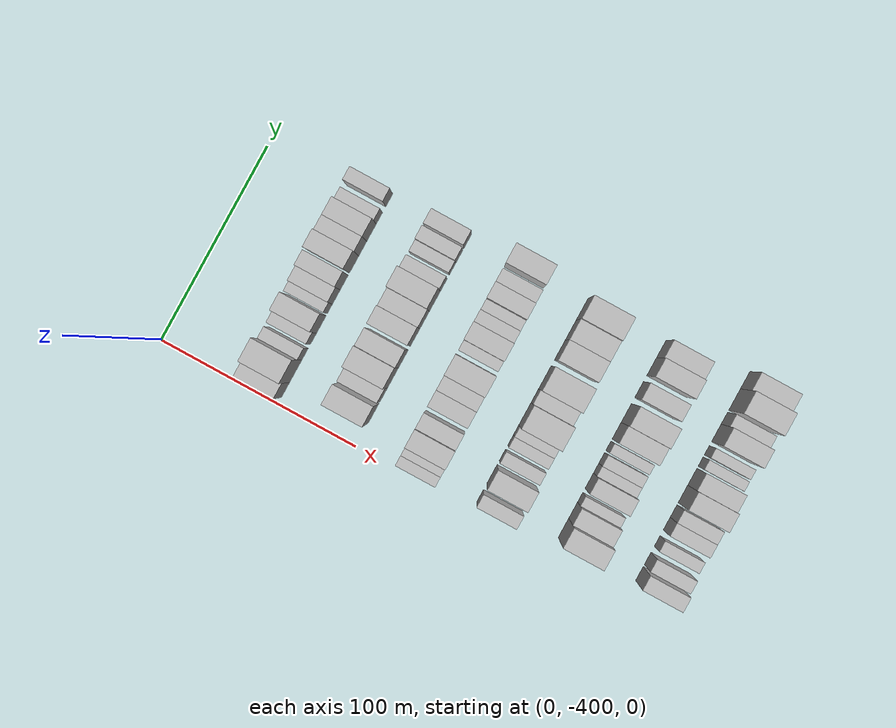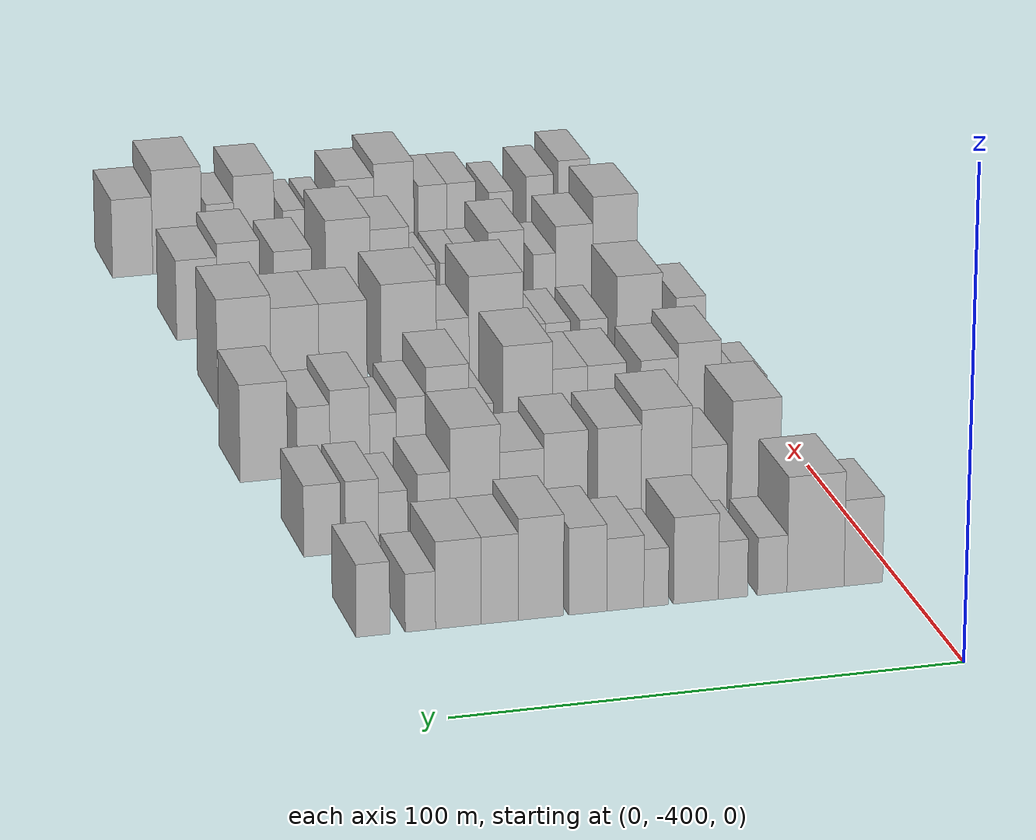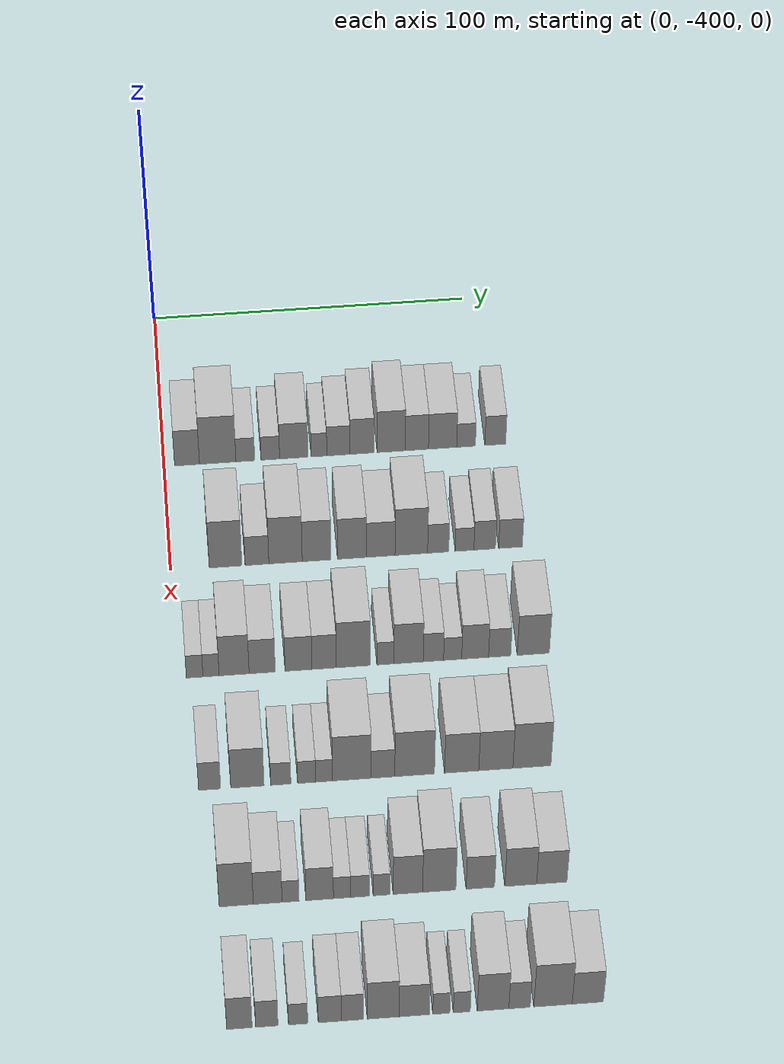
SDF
<sdf version="1.6">
 <world name="default">
  <model name="building_22">
   <static>1</static>
   <pose>50.0000 -392.6774 0 0.000000 0.000000 0.000000</pose>
   <link name="link">
    <pose>0 0 9.00 0 0 0</pose>
    <collision name="collision"><geometry><box><size>20.0000 7.8410 18.0000</size></box></geometry></collision>
    <visual name="visual">
     <cast_shadows>0</cast_shadows>
     <geometry><box><size>20.0000 7.8410 18.0000</size></box></geometry>
     <material>
      <script>
       <uri>model://HANNAS_wall/materials/scripts</uri>
       <uri>model://HANNAS_wall/materials/textures</uri>
       <name>vrc/HANNAS_wall</name>
      </script>
     </material>
    </visual>
   </link>
  </model>
  <model name="building_23">
   <static>1</static>
   <pose>50.0000 -383.0154 0 0.000000 0.000000 0.000000</pose>
   <link name="link">
    <pose>0 0 12.00 0 0 0</pose>
    <collision name="collision"><geometry><box><size>20.0000 11.4830 24.0000</size></box></geometry></collision>
    <visual name="visual">
     <cast_shadows>0</cast_shadows>
     <geometry><box><size>20.0000 11.4830 24.0000</size></box></geometry>
     <material>
      <script>
       <uri>model://HANNAS_wall/materials/scripts</uri>
       <uri>model://HANNAS_wall/materials/textures</uri>
       <name>vrc/HANNAS_wall</name>
      </script>
     </material>
    </visual>
   </link>
  </model>
  <model name="building_24">
   <static>1</static>
   <pose>50.0000 -374.3030 0 0.000000 0.000000 0.000000</pose>
   <link name="link">
    <pose>0 0 6.00 0 0 0</pose>
    <collision name="collision"><geometry><box><size>20.0000 5.9419 12.0000</size></box></geometry></collision>
    <visual name="visual">
     <cast_shadows>0</cast_shadows>
     <geometry><box><size>20.0000 5.9419 12.0000</size></box></geometry>
     <material>
      <script>
       <uri>model://HANNAS_wall/materials/scripts</uri>
       <uri>model://HANNAS_wall/materials/textures</uri>
       <name>vrc/HANNAS_wall</name>
      </script>
     </material>
    </visual>
   </link>
  </model>
  <model name="building_25">
   <static>1</static>
   <pose>50.0000 -366.4054 0 0.000000 0.000000 0.000000</pose>
   <link name="link">
    <pose>0 0 6.00 0 0 0</pose>
    <collision name="collision"><geometry><box><size>20.0000 5.8532 12.0000</size></box></geometry></collision>
    <visual name="visual">
     <cast_shadows>0</cast_shadows>
     <geometry><box><size>20.0000 5.8532 12.0000</size></box></geometry>
     <material>
      <script>
       <uri>model://HANNAS_wall/materials/scripts</uri>
       <uri>model://HANNAS_wall/materials/textures</uri>
       <name>vrc/HANNAS_wall</name>
      </script>
     </material>
    </visual>
   </link>
  </model>
  <model name="building_26">
   <static>1</static>
   <pose>50.0000 -358.9968 0 0.000000 0.000000 0.000000</pose>
   <link name="link">
    <pose>0 0 9.00 0 0 0</pose>
    <collision name="collision"><geometry><box><size>20.0000 8.9639 18.0000</size></box></geometry></collision>
    <visual name="visual">
     <cast_shadows>0</cast_shadows>
     <geometry><box><size>20.0000 8.9639 18.0000</size></box></geometry>
     <material>
      <script>
       <uri>model://HANNAS_wall/materials/scripts</uri>
       <uri>model://HANNAS_wall/materials/textures</uri>
       <name>vrc/HANNAS_wall</name>
      </script>
     </material>
    </visual>
   </link>
  </model>
  <model name="building_27">
   <static>1</static>
   <pose>50.0000 -351.0459 0 0.000000 0.000000 0.000000</pose>
   <link name="link">
    <pose>0 0 6.00 0 0 0</pose>
    <collision name="collision"><geometry><box><size>20.0000 4.9378 12.0000</size></box></geometry></collision>
    <visual name="visual">
     <cast_shadows>0</cast_shadows>
     <geometry><box><size>20.0000 4.9378 12.0000</size></box></geometry>
     <material>
      <script>
       <uri>model://HANNAS_wall/materials/scripts</uri>
       <uri>model://HANNAS_wall/materials/textures</uri>
       <name>vrc/HANNAS_wall</name>
      </script>
     </material>
    </visual>
   </link>
  </model>
  <model name="building_28">
   <static>1</static>
   <pose>50.0000 -344.8875 0 0.000000 0.000000 0.000000</pose>
   <link name="link">
    <pose>0 0 7.50 0 0 0</pose>
    <collision name="collision"><geometry><box><size>20.0000 7.3791 15.0000</size></box></geometry></collision>
    <visual name="visual">
     <cast_shadows>0</cast_shadows>
     <geometry><box><size>20.0000 7.3791 15.0000</size></box></geometry>
     <material>
      <script>
       <uri>model://HANNAS_wall/materials/scripts</uri>
       <uri>model://HANNAS_wall/materials/textures</uri>
       <name>vrc/HANNAS_wall</name>
      </script>
     </material>
    </visual>
   </link>
  </model>
  <model name="building_29">
   <static>1</static>
   <pose>50.0000 -337.4229 0 0.000000 0.000000 0.000000</pose>
   <link name="link">
    <pose>0 0 9.00 0 0 0</pose>
    <collision name="collision"><geometry><box><size>20.0000 7.5499 18.0000</size></box></geometry></collision>
    <visual name="visual">
     <cast_shadows>0</cast_shadows>
     <geometry><box><size>20.0000 7.5499 18.0000</size></box></geometry>
     <material>
      <script>
       <uri>model://HANNAS_wall/materials/scripts</uri>
       <uri>model://HANNAS_wall/materials/textures</uri>
       <name>vrc/HANNAS_wall</name>
      </script>
     </material>
    </visual>
   </link>
  </model>
  <model name="building_30">
   <static>1</static>
   <pose>50.0000 -328.2033 0 0.000000 0.000000 0.000000</pose>
   <link name="link">
    <pose>0 0 10.50 0 0 0</pose>
    <collision name="collision"><geometry><box><size>20.0000 8.8892 21.0000</size></box></geometry></collision>
    <visual name="visual">
     <cast_shadows>0</cast_shadows>
     <geometry><box><size>20.0000 8.8892 21.0000</size></box></geometry>
     <material>
      <script>
       <uri>model://HANNAS_wall/materials/scripts</uri>
       <uri>model://HANNAS_wall/materials/textures</uri>
       <name>vrc/HANNAS_wall</name>
      </script>
     </material>
    </visual>
   </link>
  </model>
  <model name="building_31">
   <static>1</static>
   <pose>50.0000 -320.0710 0 0.000000 0.000000 0.000000</pose>
   <link name="link">
    <pose>0 0 9.00 0 0 0</pose>
    <collision name="collision"><geometry><box><size>20.0000 7.3755 18.0000</size></box></geometry></collision>
    <visual name="visual">
     <cast_shadows>0</cast_shadows>
     <geometry><box><size>20.0000 7.3755 18.0000</size></box></geometry>
     <material>
      <script>
       <uri>model://HANNAS_wall/materials/scripts</uri>
       <uri>model://HANNAS_wall/materials/textures</uri>
       <name>vrc/HANNAS_wall</name>
      </script>
     </material>
    </visual>
   </link>
  </model>
  <model name="building_32">
   <static>1</static>
   <pose>50.0000 -311.9032 0 0.000000 0.000000 0.000000</pose>
   <link name="link">
    <pose>0 0 9.00 0 0 0</pose>
    <collision name="collision"><geometry><box><size>20.0000 8.9600 18.0000</size></box></geometry></collision>
    <visual name="visual">
     <cast_shadows>0</cast_shadows>
     <geometry><box><size>20.0000 8.9600 18.0000</size></box></geometry>
     <material>
      <script>
       <uri>model://HANNAS_wall/materials/scripts</uri>
       <uri>model://HANNAS_wall/materials/textures</uri>
       <name>vrc/HANNAS_wall</name>
      </script>
     </material>
    </visual>
   </link>
  </model>
  <model name="building_33">
   <static>1</static>
   <pose>50.0000 -304.4549 0 0.000000 0.000000 0.000000</pose>
   <link name="link">
    <pose>0 0 6.00 0 0 0</pose>
    <collision name="collision"><geometry><box><size>20.0000 5.9368 12.0000</size></box></geometry></collision>
    <visual name="visual">
     <cast_shadows>0</cast_shadows>
     <geometry><box><size>20.0000 5.9368 12.0000</size></box></geometry>
     <material>
      <script>
       <uri>model://HANNAS_wall/materials/scripts</uri>
       <uri>model://HANNAS_wall/materials/textures</uri>
       <name>vrc/HANNAS_wall</name>
      </script>
     </material>
    </visual>
   </link>
  </model>
  <model name="building_34">
   <static>1</static>
   <pose>50.0000 -295.1882 0 0.000000 0.000000 0.000000</pose>
   <link name="link">
    <pose>0 0 7.50 0 0 0</pose>
    <collision name="collision"><geometry><box><size>20.0000 6.5967 15.0000</size></box></geometry></collision>
    <visual name="visual">
     <cast_shadows>0</cast_shadows>
     <geometry><box><size>20.0000 6.5967 15.0000</size></box></geometry>
     <material>
      <script>
       <uri>model://HANNAS_wall/materials/scripts</uri>
       <uri>model://HANNAS_wall/materials/textures</uri>
       <name>vrc/HANNAS_wall</name>
      </script>
     </material>
    </visual>
   </link>
  </model>
  <model name="building_155">
   <static>1</static>
   <pose>90.0000 -382.9536 0 0.000000 0.000000 0.000000</pose>
   <link name="link">
    <pose>0 0 12.00 0 0 0</pose>
    <collision name="collision"><geometry><box><size>20.0000 10.0765 24.0000</size></box></geometry></collision>
    <visual name="visual">
     <cast_shadows>0</cast_shadows>
     <geometry><box><size>20.0000 10.0765 24.0000</size></box></geometry>
     <material>
      <script>
       <uri>model://HANNAS_wall/materials/scripts</uri>
       <uri>model://HANNAS_wall/materials/textures</uri>
       <name>vrc/HANNAS_wall</name>
      </script>
     </material>
    </visual>
   </link>
  </model>
  <model name="building_156">
   <static>1</static>
   <pose>90.0000 -373.2446 0 0.000000 0.000000 0.000000</pose>
   <link name="link">
    <pose>0 0 7.50 0 0 0</pose>
    <collision name="collision"><geometry><box><size>20.0000 7.3414 15.0000</size></box></geometry></collision>
    <visual name="visual">
     <cast_shadows>0</cast_shadows>
     <geometry><box><size>20.0000 7.3414 15.0000</size></box></geometry>
     <material>
      <script>
       <uri>model://HANNAS_wall/materials/scripts</uri>
       <uri>model://HANNAS_wall/materials/textures</uri>
       <name>vrc/HANNAS_wall</name>
      </script>
     </material>
    </visual>
   </link>
  </model>
  <model name="building_157">
   <static>1</static>
   <pose>90.0000 -364.3995 0 0.000000 0.000000 0.000000</pose>
   <link name="link">
    <pose>0 0 12.00 0 0 0</pose>
    <collision name="collision"><geometry><box><size>20.0000 10.3490 24.0000</size></box></geometry></collision>
    <visual name="visual">
     <cast_shadows>0</cast_shadows>
     <geometry><box><size>20.0000 10.3490 24.0000</size></box></geometry>
     <material>
      <script>
       <uri>model://HANNAS_wall/materials/scripts</uri>
       <uri>model://HANNAS_wall/materials/textures</uri>
       <name>vrc/HANNAS_wall</name>
      </script>
     </material>
    </visual>
   </link>
  </model>
  <model name="building_158">
   <static>1</static>
   <pose>90.0000 -354.7630 0 0.000000 0.000000 0.000000</pose>
   <link name="link">
    <pose>0 0 10.50 0 0 0</pose>
    <collision name="collision"><geometry><box><size>20.0000 8.9239 21.0000</size></box></geometry></collision>
    <visual name="visual">
     <cast_shadows>0</cast_shadows>
     <geometry><box><size>20.0000 8.9239 21.0000</size></box></geometry>
     <material>
      <script>
       <uri>model://HANNAS_wall/materials/scripts</uri>
       <uri>model://HANNAS_wall/materials/textures</uri>
       <name>vrc/HANNAS_wall</name>
      </script>
     </material>
    </visual>
   </link>
  </model>
  <model name="building_159">
   <static>1</static>
   <pose>90.0000 -343.8203 0 0.000000 0.000000 0.000000</pose>
   <link name="link">
    <pose>0 0 10.50 0 0 0</pose>
    <collision name="collision"><geometry><box><size>20.0000 8.9615 21.0000</size></box></geometry></collision>
    <visual name="visual">
     <cast_shadows>0</cast_shadows>
     <geometry><box><size>20.0000 8.9615 21.0000</size></box></geometry>
     <material>
      <script>
       <uri>model://HANNAS_wall/materials/scripts</uri>
       <uri>model://HANNAS_wall/materials/textures</uri>
       <name>vrc/HANNAS_wall</name>
      </script>
     </material>
    </visual>
   </link>
  </model>
  <model name="building_160">
   <static>1</static>
   <pose>90.0000 -334.8987 0 0.000000 0.000000 0.000000</pose>
   <link name="link">
    <pose>0 0 9.00 0 0 0</pose>
    <collision name="collision"><geometry><box><size>20.0000 8.8817 18.0000</size></box></geometry></collision>
    <visual name="visual">
     <cast_shadows>0</cast_shadows>
     <geometry><box><size>20.0000 8.8817 18.0000</size></box></geometry>
     <material>
      <script>
       <uri>model://HANNAS_wall/materials/scripts</uri>
       <uri>model://HANNAS_wall/materials/textures</uri>
       <name>vrc/HANNAS_wall</name>
      </script>
     </material>
    </visual>
   </link>
  </model>
  <model name="building_161">
   <static>1</static>
   <pose>90.0000 -325.4000 0 0.000000 0.000000 0.000000</pose>
   <link name="link">
    <pose>0 0 12.00 0 0 0</pose>
    <collision name="collision"><geometry><box><size>20.0000 10.1157 24.0000</size></box></geometry></collision>
    <visual name="visual">
     <cast_shadows>0</cast_shadows>
     <geometry><box><size>20.0000 10.1157 24.0000</size></box></geometry>
     <material>
      <script>
       <uri>model://HANNAS_wall/materials/scripts</uri>
       <uri>model://HANNAS_wall/materials/textures</uri>
       <name>vrc/HANNAS_wall</name>
      </script>
     </material>
    </visual>
   </link>
  </model>
  <model name="building_162">
   <static>1</static>
   <pose>90.0000 -317.0515 0 0.000000 0.000000 0.000000</pose>
   <link name="link">
    <pose>0 0 7.50 0 0 0</pose>
    <collision name="collision"><geometry><box><size>20.0000 6.5813 15.0000</size></box></geometry></collision>
    <visual name="visual">
     <cast_shadows>0</cast_shadows>
     <geometry><box><size>20.0000 6.5813 15.0000</size></box></geometry>
     <material>
      <script>
       <uri>model://HANNAS_wall/materials/scripts</uri>
       <uri>model://HANNAS_wall/materials/textures</uri>
       <name>vrc/HANNAS_wall</name>
      </script>
     </material>
    </visual>
   </link>
  </model>
  <model name="building_163">
   <static>1</static>
   <pose>90.0000 -308.8434 0 0.000000 0.000000 0.000000</pose>
   <link name="link">
    <pose>0 0 6.00 0 0 0</pose>
    <collision name="collision"><geometry><box><size>20.0000 5.8348 12.0000</size></box></geometry></collision>
    <visual name="visual">
     <cast_shadows>0</cast_shadows>
     <geometry><box><size>20.0000 5.8348 12.0000</size></box></geometry>
     <material>
      <script>
       <uri>model://HANNAS_wall/materials/scripts</uri>
       <uri>model://HANNAS_wall/materials/textures</uri>
       <name>vrc/HANNAS_wall</name>
      </script>
     </material>
    </visual>
   </link>
  </model>
  <model name="building_164">
   <static>1</static>
   <pose>90.0000 -302.5846 0 0.000000 0.000000 0.000000</pose>
   <link name="link">
    <pose>0 0 7.50 0 0 0</pose>
    <collision name="collision"><geometry><box><size>20.0000 6.6829 15.0000</size></box></geometry></collision>
    <visual name="visual">
     <cast_shadows>0</cast_shadows>
     <geometry><box><size>20.0000 6.6829 15.0000</size></box></geometry>
     <material>
      <script>
       <uri>model://HANNAS_wall/materials/scripts</uri>
       <uri>model://HANNAS_wall/materials/textures</uri>
       <name>vrc/HANNAS_wall</name>
      </script>
     </material>
    </visual>
   </link>
  </model>
  <model name="building_165">
   <static>1</static>
   <pose>90.0000 -294.5546 0 0.000000 0.000000 0.000000</pose>
   <link name="link">
    <pose>0 0 7.50 0 0 0</pose>
    <collision name="collision"><geometry><box><size>20.0000 7.3771 15.0000</size></box></geometry></collision>
    <visual name="visual">
     <cast_shadows>0</cast_shadows>
     <geometry><box><size>20.0000 7.3771 15.0000</size></box></geometry>
     <material>
      <script>
       <uri>model://HANNAS_wall/materials/scripts</uri>
       <uri>model://HANNAS_wall/materials/textures</uri>
       <name>vrc/HANNAS_wall</name>
      </script>
     </material>
    </visual>
   </link>
  </model>
  <model name="building_287">
   <static>1</static>
   <pose>130.0000 -394.7348 0 0.000000 0.000000 0.000000</pose>
   <link name="link">
    <pose>0 0 6.00 0 0 0</pose>
    <collision name="collision"><geometry><box><size>20.0000 5.0227 12.0000</size></box></geometry></collision>
    <visual name="visual">
     <cast_shadows>0</cast_shadows>
     <geometry><box><size>20.0000 5.0227 12.0000</size></box></geometry>
     <material>
      <script>
       <uri>model://HANNAS_wall/materials/scripts</uri>
       <uri>model://HANNAS_wall/materials/textures</uri>
       <name>vrc/HANNAS_wall</name>
      </script>
     </material>
    </visual>
   </link>
  </model>
  <model name="building_288">
   <static>1</static>
   <pose>130.0000 -389.7800 0 0.000000 0.000000 0.000000</pose>
   <link name="link">
    <pose>0 0 6.00 0 0 0</pose>
    <collision name="collision"><geometry><box><size>20.0000 4.8868 12.0000</size></box></geometry></collision>
    <visual name="visual">
     <cast_shadows>0</cast_shadows>
     <geometry><box><size>20.0000 4.8868 12.0000</size></box></geometry>
     <material>
      <script>
       <uri>model://HANNAS_wall/materials/scripts</uri>
       <uri>model://HANNAS_wall/materials/textures</uri>
       <name>vrc/HANNAS_wall</name>
      </script>
     </material>
    </visual>
   </link>
  </model>
  <model name="building_289">
   <static>1</static>
   <pose>130.0000 -382.7947 0 0.000000 0.000000 0.000000</pose>
   <link name="link">
    <pose>0 0 10.50 0 0 0</pose>
    <collision name="collision"><geometry><box><size>20.0000 9.0839 21.0000</size></box></geometry></collision>
    <visual name="visual">
     <cast_shadows>0</cast_shadows>
     <geometry><box><size>20.0000 9.0839 21.0000</size></box></geometry>
     <material>
      <script>
       <uri>model://HANNAS_wall/materials/scripts</uri>
       <uri>model://HANNAS_wall/materials/textures</uri>
       <name>vrc/HANNAS_wall</name>
      </script>
     </material>
    </visual>
   </link>
  </model>
  <model name="building_290">
   <static>1</static>
   <pose>130.0000 -374.2925 0 0.000000 0.000000 0.000000</pose>
   <link name="link">
    <pose>0 0 9.00 0 0 0</pose>
    <collision name="collision"><geometry><box><size>20.0000 7.9207 18.0000</size></box></geometry></collision>
    <visual name="visual">
     <cast_shadows>0</cast_shadows>
     <geometry><box><size>20.0000 7.9207 18.0000</size></box></geometry>
     <material>
      <script>
       <uri>model://HANNAS_wall/materials/scripts</uri>
       <uri>model://HANNAS_wall/materials/textures</uri>
       <name>vrc/HANNAS_wall</name>
      </script>
     </material>
    </visual>
   </link>
  </model>
  <model name="building_291">
   <static>1</static>
   <pose>130.0000 -363.2571 0 0.000000 0.000000 0.000000</pose>
   <link name="link">
    <pose>0 0 9.00 0 0 0</pose>
    <collision name="collision"><geometry><box><size>20.0000 8.1500 18.0000</size></box></geometry></collision>
    <visual name="visual">
     <cast_shadows>0</cast_shadows>
     <geometry><box><size>20.0000 8.1500 18.0000</size></box></geometry>
     <material>
      <script>
       <uri>model://HANNAS_wall/materials/scripts</uri>
       <uri>model://HANNAS_wall/materials/textures</uri>
       <name>vrc/HANNAS_wall</name>
      </script>
     </material>
    </visual>
   </link>
  </model>
  <model name="building_292">
   <static>1</static>
   <pose>130.0000 -355.4780 0 0.000000 0.000000 0.000000</pose>
   <link name="link">
    <pose>0 0 9.00 0 0 0</pose>
    <collision name="collision"><geometry><box><size>20.0000 7.4083 18.0000</size></box></geometry></collision>
    <visual name="visual">
     <cast_shadows>0</cast_shadows>
     <geometry><box><size>20.0000 7.4083 18.0000</size></box></geometry>
     <material>
      <script>
       <uri>model://HANNAS_wall/materials/scripts</uri>
       <uri>model://HANNAS_wall/materials/textures</uri>
       <name>vrc/HANNAS_wall</name>
      </script>
     </material>
    </visual>
   </link>
  </model>
  <model name="building_293">
   <static>1</static>
   <pose>130.0000 -346.6115 0 0.000000 0.000000 0.000000</pose>
   <link name="link">
    <pose>0 0 12.00 0 0 0</pose>
    <collision name="collision"><geometry><box><size>20.0000 10.3246 24.0000</size></box></geometry></collision>
    <visual name="visual">
     <cast_shadows>0</cast_shadows>
     <geometry><box><size>20.0000 10.3246 24.0000</size></box></geometry>
     <material>
      <script>
       <uri>model://HANNAS_wall/materials/scripts</uri>
       <uri>model://HANNAS_wall/materials/textures</uri>
       <name>vrc/HANNAS_wall</name>
      </script>
     </material>
    </visual>
   </link>
  </model>
  <model name="building_294">
   <static>1</static>
   <pose>130.0000 -336.8657 0 0.000000 0.000000 0.000000</pose>
   <link name="link">
    <pose>0 0 6.00 0 0 0</pose>
    <collision name="collision"><geometry><box><size>20.0000 5.1670 12.0000</size></box></geometry></collision>
    <visual name="visual">
     <cast_shadows>0</cast_shadows>
     <geometry><box><size>20.0000 5.1670 12.0000</size></box></geometry>
     <material>
      <script>
       <uri>model://HANNAS_wall/materials/scripts</uri>
       <uri>model://HANNAS_wall/materials/textures</uri>
       <name>vrc/HANNAS_wall</name>
      </script>
     </material>
    </visual>
   </link>
  </model>
  <model name="building_295">
   <static>1</static>
   <pose>130.0000 -329.8156 0 0.000000 0.000000 0.000000</pose>
   <link name="link">
    <pose>0 0 10.50 0 0 0</pose>
    <collision name="collision"><geometry><box><size>20.0000 8.9333 21.0000</size></box></geometry></collision>
    <visual name="visual">
     <cast_shadows>0</cast_shadows>
     <geometry><box><size>20.0000 8.9333 21.0000</size></box></geometry>
     <material>
      <script>
       <uri>model://HANNAS_wall/materials/scripts</uri>
       <uri>model://HANNAS_wall/materials/textures</uri>
       <name>vrc/HANNAS_wall</name>
      </script>
     </material>
    </visual>
   </link>
  </model>
  <model name="building_296">
   <static>1</static>
   <pose>130.0000 -322.2507 0 0.000000 0.000000 0.000000</pose>
   <link name="link">
    <pose>0 0 7.50 0 0 0</pose>
    <collision name="collision"><geometry><box><size>20.0000 6.1963 15.0000</size></box></geometry></collision>
    <visual name="visual">
     <cast_shadows>0</cast_shadows>
     <geometry><box><size>20.0000 6.1963 15.0000</size></box></geometry>
     <material>
      <script>
       <uri>model://HANNAS_wall/materials/scripts</uri>
       <uri>model://HANNAS_wall/materials/textures</uri>
       <name>vrc/HANNAS_wall</name>
      </script>
     </material>
    </visual>
   </link>
  </model>
  <model name="building_297">
   <static>1</static>
   <pose>130.0000 -316.3973 0 0.000000 0.000000 0.000000</pose>
   <link name="link">
    <pose>0 0 6.00 0 0 0</pose>
    <collision name="collision"><geometry><box><size>20.0000 5.5105 12.0000</size></box></geometry></collision>
    <visual name="visual">
     <cast_shadows>0</cast_shadows>
     <geometry><box><size>20.0000 5.5105 12.0000</size></box></geometry>
     <material>
      <script>
       <uri>model://HANNAS_wall/materials/scripts</uri>
       <uri>model://HANNAS_wall/materials/textures</uri>
       <name>vrc/HANNAS_wall</name>
      </script>
     </material>
    </visual>
   </link>
  </model>
  <model name="building_298">
   <static>1</static>
   <pose>130.0000 -309.5416 0 0.000000 0.000000 0.000000</pose>
   <link name="link">
    <pose>0 0 9.00 0 0 0</pose>
    <collision name="collision"><geometry><box><size>20.0000 8.2009 18.0000</size></box></geometry></collision>
    <visual name="visual">
     <cast_shadows>0</cast_shadows>
     <geometry><box><size>20.0000 8.2009 18.0000</size></box></geometry>
     <material>
      <script>
       <uri>model://HANNAS_wall/materials/scripts</uri>
       <uri>model://HANNAS_wall/materials/textures</uri>
       <name>vrc/HANNAS_wall</name>
      </script>
     </material>
    </visual>
   </link>
  </model>
  <model name="building_299">
   <static>1</static>
   <pose>130.0000 -302.0609 0 0.000000 0.000000 0.000000</pose>
   <link name="link">
    <pose>0 0 7.50 0 0 0</pose>
    <collision name="collision"><geometry><box><size>20.0000 6.7606 15.0000</size></box></geometry></collision>
    <visual name="visual">
     <cast_shadows>0</cast_shadows>
     <geometry><box><size>20.0000 6.7606 15.0000</size></box></geometry>
     <material>
      <script>
       <uri>model://HANNAS_wall/materials/scripts</uri>
       <uri>model://HANNAS_wall/materials/textures</uri>
       <name>vrc/HANNAS_wall</name>
      </script>
     </material>
    </visual>
   </link>
  </model>
  <model name="building_300">
   <static>1</static>
   <pose>130.0000 -291.7869 0 0.000000 0.000000 0.000000</pose>
   <link name="link">
    <pose>0 0 10.50 0 0 0</pose>
    <collision name="collision"><geometry><box><size>20.0000 9.7873 21.0000</size></box></geometry></collision>
    <visual name="visual">
     <cast_shadows>0</cast_shadows>
     <geometry><box><size>20.0000 9.7873 21.0000</size></box></geometry>
     <material>
      <script>
       <uri>model://HANNAS_wall/materials/scripts</uri>
       <uri>model://HANNAS_wall/materials/textures</uri>
       <name>vrc/HANNAS_wall</name>
      </script>
     </material>
    </visual>
   </link>
  </model>
  <model name="building_426">
   <static>1</static>
   <pose>170.0000 -392.5282 0 0.000000 0.000000 0.000000</pose>
   <link name="link">
    <pose>0 0 7.50 0 0 0</pose>
    <collision name="collision"><geometry><box><size>20.0000 6.5286 15.0000</size></box></geometry></collision>
    <visual name="visual">
     <cast_shadows>0</cast_shadows>
     <geometry><box><size>20.0000 6.5286 15.0000</size></box></geometry>
     <material>
      <script>
       <uri>model://HANNAS_wall/materials/scripts</uri>
       <uri>model://HANNAS_wall/materials/textures</uri>
       <name>vrc/HANNAS_wall</name>
      </script>
     </material>
    </visual>
   </link>
  </model>
  <model name="building_427">
   <static>1</static>
   <pose>170.0000 -381.3181 0 0.000000 0.000000 0.000000</pose>
   <link name="link">
    <pose>0 0 10.50 0 0 0</pose>
    <collision name="collision"><geometry><box><size>20.0000 9.8917 21.0000</size></box></geometry></collision>
    <visual name="visual">
     <cast_shadows>0</cast_shadows>
     <geometry><box><size>20.0000 9.8917 21.0000</size></box></geometry>
     <material>
      <script>
       <uri>model://HANNAS_wall/materials/scripts</uri>
       <uri>model://HANNAS_wall/materials/textures</uri>
       <name>vrc/HANNAS_wall</name>
      </script>
     </material>
    </visual>
   </link>
  </model>
  <model name="building_428">
   <static>1</static>
   <pose>170.0000 -371.3888 0 0.000000 0.000000 0.000000</pose>
   <link name="link">
    <pose>0 0 6.00 0 0 0</pose>
    <collision name="collision"><geometry><box><size>20.0000 5.9668 12.0000</size></box></geometry></collision>
    <visual name="visual">
     <cast_shadows>0</cast_shadows>
     <geometry><box><size>20.0000 5.9668 12.0000</size></box></geometry>
     <material>
      <script>
       <uri>model://HANNAS_wall/materials/scripts</uri>
       <uri>model://HANNAS_wall/materials/textures</uri>
       <name>vrc/HANNAS_wall</name>
      </script>
     </material>
    </visual>
   </link>
  </model>
  <model name="building_429">
   <static>1</static>
   <pose>170.0000 -363.7089 0 0.000000 0.000000 0.000000</pose>
   <link name="link">
    <pose>0 0 6.00 0 0 0</pose>
    <collision name="collision"><geometry><box><size>20.0000 5.3929 12.0000</size></box></geometry></collision>
    <visual name="visual">
     <cast_shadows>0</cast_shadows>
     <geometry><box><size>20.0000 5.3929 12.0000</size></box></geometry>
     <material>
      <script>
       <uri>model://HANNAS_wall/materials/scripts</uri>
       <uri>model://HANNAS_wall/materials/textures</uri>
       <name>vrc/HANNAS_wall</name>
      </script>
     </material>
    </visual>
   </link>
  </model>
  <model name="building_430">
   <static>1</static>
   <pose>170.0000 -358.5230 0 0.000000 0.000000 0.000000</pose>
   <link name="link">
    <pose>0 0 6.00 0 0 0</pose>
    <collision name="collision"><geometry><box><size>20.0000 4.9789 12.0000</size></box></geometry></collision>
    <visual name="visual">
     <cast_shadows>0</cast_shadows>
     <geometry><box><size>20.0000 4.9789 12.0000</size></box></geometry>
     <material>
      <script>
       <uri>model://HANNAS_wall/materials/scripts</uri>
       <uri>model://HANNAS_wall/materials/textures</uri>
       <name>vrc/HANNAS_wall</name>
      </script>
     </material>
    </visual>
   </link>
  </model>
  <model name="building_431">
   <static>1</static>
   <pose>170.0000 -350.2576 0 0.000000 0.000000 0.000000</pose>
   <link name="link">
    <pose>0 0 12.00 0 0 0</pose>
    <collision name="collision"><geometry><box><size>20.0000 11.5517 24.0000</size></box></geometry></collision>
    <visual name="visual">
     <cast_shadows>0</cast_shadows>
     <geometry><box><size>20.0000 11.5517 24.0000</size></box></geometry>
     <material>
      <script>
       <uri>model://HANNAS_wall/materials/scripts</uri>
       <uri>model://HANNAS_wall/materials/textures</uri>
       <name>vrc/HANNAS_wall</name>
      </script>
     </material>
    </visual>
   </link>
  </model>
  <model name="building_432">
   <static>1</static>
   <pose>170.0000 -340.9869 0 0.000000 0.000000 0.000000</pose>
   <link name="link">
    <pose>0 0 7.50 0 0 0</pose>
    <collision name="collision"><geometry><box><size>20.0000 6.9899 15.0000</size></box></geometry></collision>
    <visual name="visual">
     <cast_shadows>0</cast_shadows>
     <geometry><box><size>20.0000 6.9899 15.0000</size></box></geometry>
     <material>
      <script>
       <uri>model://HANNAS_wall/materials/scripts</uri>
       <uri>model://HANNAS_wall/materials/textures</uri>
       <name>vrc/HANNAS_wall</name>
      </script>
     </material>
    </visual>
   </link>
  </model>
  <model name="building_433">
   <static>1</static>
   <pose>170.0000 -331.5765 0 0.000000 0.000000 0.000000</pose>
   <link name="link">
    <pose>0 0 12.00 0 0 0</pose>
    <collision name="collision"><geometry><box><size>20.0000 11.8308 24.0000</size></box></geometry></collision>
    <visual name="visual">
     <cast_shadows>0</cast_shadows>
     <geometry><box><size>20.0000 11.8308 24.0000</size></box></geometry>
     <material>
      <script>
       <uri>model://HANNAS_wall/materials/scripts</uri>
       <uri>model://HANNAS_wall/materials/textures</uri>
       <name>vrc/HANNAS_wall</name>
      </script>
     </material>
    </visual>
   </link>
  </model>
  <model name="building_434">
   <static>1</static>
   <pose>170.0000 -317.5495 0 0.000000 0.000000 0.000000</pose>
   <link name="link">
    <pose>0 0 10.50 0 0 0</pose>
    <collision name="collision"><geometry><box><size>20.0000 10.2233 21.0000</size></box></geometry></collision>
    <visual name="visual">
     <cast_shadows>0</cast_shadows>
     <geometry><box><size>20.0000 10.2233 21.0000</size></box></geometry>
     <material>
      <script>
       <uri>model://HANNAS_wall/materials/scripts</uri>
       <uri>model://HANNAS_wall/materials/textures</uri>
       <name>vrc/HANNAS_wall</name>
      </script>
     </material>
    </visual>
   </link>
  </model>
  <model name="building_435">
   <static>1</static>
   <pose>170.0000 -307.3350 0 0.000000 0.000000 0.000000</pose>
   <link name="link">
    <pose>0 0 10.50 0 0 0</pose>
    <collision name="collision"><geometry><box><size>20.0000 10.2056 21.0000</size></box></geometry></collision>
    <visual name="visual">
     <cast_shadows>0</cast_shadows>
     <geometry><box><size>20.0000 10.2056 21.0000</size></box></geometry>
     <material>
      <script>
       <uri>model://HANNAS_wall/materials/scripts</uri>
       <uri>model://HANNAS_wall/materials/textures</uri>
       <name>vrc/HANNAS_wall</name>
      </script>
     </material>
    </visual>
   </link>
  </model>
  <model name="building_436">
   <static>1</static>
   <pose>170.0000 -296.5509 0 0.000000 0.000000 0.000000</pose>
   <link name="link">
    <pose>0 0 12.00 0 0 0</pose>
    <collision name="collision"><geometry><box><size>20.0000 11.3626 24.0000</size></box></geometry></collision>
    <visual name="visual">
     <cast_shadows>0</cast_shadows>
     <geometry><box><size>20.0000 11.3626 24.0000</size></box></geometry>
     <material>
      <script>
       <uri>model://HANNAS_wall/materials/scripts</uri>
       <uri>model://HANNAS_wall/materials/textures</uri>
       <name>vrc/HANNAS_wall</name>
      </script>
     </material>
    </visual>
   </link>
  </model>
  <model name="building_555">
   <static>1</static>
   <pose>210.0000 -387.1152 0 0.000000 0.000000 0.000000</pose>
   <link name="link">
    <pose>0 0 12.00 0 0 0</pose>
    <collision name="collision"><geometry><box><size>20.0000 9.9128 24.0000</size></box></geometry></collision>
    <visual name="visual">
     <cast_shadows>0</cast_shadows>
     <geometry><box><size>20.0000 9.9128 24.0000</size></box></geometry>
     <material>
      <script>
       <uri>model://HANNAS_wall/materials/scripts</uri>
       <uri>model://HANNAS_wall/materials/textures</uri>
       <name>vrc/HANNAS_wall</name>
      </script>
     </material>
    </visual>
   </link>
  </model>
  <model name="building_556">
   <static>1</static>
   <pose>210.0000 -377.9787 0 0.000000 0.000000 0.000000</pose>
   <link name="link">
    <pose>0 0 9.00 0 0 0</pose>
    <collision name="collision"><geometry><box><size>20.0000 8.3601 18.0000</size></box></geometry></collision>
    <visual name="visual">
     <cast_shadows>0</cast_shadows>
     <geometry><box><size>20.0000 8.3601 18.0000</size></box></geometry>
     <material>
      <script>
       <uri>model://HANNAS_wall/materials/scripts</uri>
       <uri>model://HANNAS_wall/materials/textures</uri>
       <name>vrc/HANNAS_wall</name>
      </script>
     </material>
    </visual>
   </link>
  </model>
  <model name="building_557">
   <static>1</static>
   <pose>210.0000 -371.3247 0 0.000000 0.000000 0.000000</pose>
   <link name="link">
    <pose>0 0 6.00 0 0 0</pose>
    <collision name="collision"><geometry><box><size>20.0000 4.9480 12.0000</size></box></geometry></collision>
    <visual name="visual">
     <cast_shadows>0</cast_shadows>
     <geometry><box><size>20.0000 4.9480 12.0000</size></box></geometry>
     <material>
      <script>
       <uri>model://HANNAS_wall/materials/scripts</uri>
       <uri>model://HANNAS_wall/materials/textures</uri>
       <name>vrc/HANNAS_wall</name>
      </script>
     </material>
    </visual>
   </link>
  </model>
  <model name="building_558">
   <static>1</static>
   <pose>210.0000 -362.8475 0 0.000000 0.000000 0.000000</pose>
   <link name="link">
    <pose>0 0 9.00 0 0 0</pose>
    <collision name="collision"><geometry><box><size>20.0000 8.0064 18.0000</size></box></geometry></collision>
    <visual name="visual">
     <cast_shadows>0</cast_shadows>
     <geometry><box><size>20.0000 8.0064 18.0000</size></box></geometry>
     <material>
      <script>
       <uri>model://HANNAS_wall/materials/scripts</uri>
       <uri>model://HANNAS_wall/materials/textures</uri>
       <name>vrc/HANNAS_wall</name>
      </script>
     </material>
    </visual>
   </link>
  </model>
  <model name="building_559">
   <static>1</static>
   <pose>210.0000 -356.3356 0 0.000000 0.000000 0.000000</pose>
   <link name="link">
    <pose>0 0 6.00 0 0 0</pose>
    <collision name="collision"><geometry><box><size>20.0000 5.0174 12.0000</size></box></geometry></collision>
    <visual name="visual">
     <cast_shadows>0</cast_shadows>
     <geometry><box><size>20.0000 5.0174 12.0000</size></box></geometry>
     <material>
      <script>
       <uri>model://HANNAS_wall/materials/scripts</uri>
       <uri>model://HANNAS_wall/materials/textures</uri>
       <name>vrc/HANNAS_wall</name>
      </script>
     </material>
    </visual>
   </link>
  </model>
  <model name="building_560">
   <static>1</static>
   <pose>210.0000 -351.0452 0 0.000000 0.000000 0.000000</pose>
   <link name="link">
    <pose>0 0 6.00 0 0 0</pose>
    <collision name="collision"><geometry><box><size>20.0000 5.5634 12.0000</size></box></geometry></collision>
    <visual name="visual">
     <cast_shadows>0</cast_shadows>
     <geometry><box><size>20.0000 5.5634 12.0000</size></box></geometry>
     <material>
      <script>
       <uri>model://HANNAS_wall/materials/scripts</uri>
       <uri>model://HANNAS_wall/materials/textures</uri>
       <name>vrc/HANNAS_wall</name>
      </script>
     </material>
    </visual>
   </link>
  </model>
  <model name="building_561">
   <static>1</static>
   <pose>210.0000 -344.8520 0 0.000000 0.000000 0.000000</pose>
   <link name="link">
    <pose>0 0 6.00 0 0 0</pose>
    <collision name="collision"><geometry><box><size>20.0000 4.8230 12.0000</size></box></geometry></collision>
    <visual name="visual">
     <cast_shadows>0</cast_shadows>
     <geometry><box><size>20.0000 4.8230 12.0000</size></box></geometry>
     <material>
      <script>
       <uri>model://HANNAS_wall/materials/scripts</uri>
       <uri>model://HANNAS_wall/materials/textures</uri>
       <name>vrc/HANNAS_wall</name>
      </script>
     </material>
    </visual>
   </link>
  </model>
  <model name="building_562">
   <static>1</static>
   <pose>210.0000 -337.1503 0 0.000000 0.000000 0.000000</pose>
   <link name="link">
    <pose>0 0 10.50 0 0 0</pose>
    <collision name="collision"><geometry><box><size>20.0000 8.5802 21.0000</size></box></geometry></collision>
    <visual name="visual">
     <cast_shadows>0</cast_shadows>
     <geometry><box><size>20.0000 8.5802 21.0000</size></box></geometry>
     <material>
      <script>
       <uri>model://HANNAS_wall/materials/scripts</uri>
       <uri>model://HANNAS_wall/materials/textures</uri>
       <name>vrc/HANNAS_wall</name>
      </script>
     </material>
    </visual>
   </link>
  </model>
  <model name="building_563">
   <static>1</static>
   <pose>210.0000 -328.0007 0 0.000000 0.000000 0.000000</pose>
   <link name="link">
    <pose>0 0 12.00 0 0 0</pose>
    <collision name="collision"><geometry><box><size>20.0000 9.7191 24.0000</size></box></geometry></collision>
    <visual name="visual">
     <cast_shadows>0</cast_shadows>
     <geometry><box><size>20.0000 9.7191 24.0000</size></box></geometry>
     <material>
      <script>
       <uri>model://HANNAS_wall/materials/scripts</uri>
       <uri>model://HANNAS_wall/materials/textures</uri>
       <name>vrc/HANNAS_wall</name>
      </script>
     </material>
    </visual>
   </link>
  </model>
  <model name="building_564">
   <static>1</static>
   <pose>210.0000 -315.9764 0 0.000000 0.000000 0.000000</pose>
   <link name="link">
    <pose>0 0 9.00 0 0 0</pose>
    <collision name="collision"><geometry><box><size>20.0000 8.3295 18.0000</size></box></geometry></collision>
    <visual name="visual">
     <cast_shadows>0</cast_shadows>
     <geometry><box><size>20.0000 8.3295 18.0000</size></box></geometry>
     <material>
      <script>
       <uri>model://HANNAS_wall/materials/scripts</uri>
       <uri>model://HANNAS_wall/materials/textures</uri>
       <name>vrc/HANNAS_wall</name>
      </script>
     </material>
    </visual>
   </link>
  </model>
  <model name="building_565">
   <static>1</static>
   <pose>210.0000 -304.1595 0 0.000000 0.000000 0.000000</pose>
   <link name="link">
    <pose>0 0 10.50 0 0 0</pose>
    <collision name="collision"><geometry><box><size>20.0000 9.3043 21.0000</size></box></geometry></collision>
    <visual name="visual">
     <cast_shadows>0</cast_shadows>
     <geometry><box><size>20.0000 9.3043 21.0000</size></box></geometry>
     <material>
      <script>
       <uri>model://HANNAS_wall/materials/scripts</uri>
       <uri>model://HANNAS_wall/materials/textures</uri>
       <name>vrc/HANNAS_wall</name>
      </script>
     </material>
    </visual>
   </link>
  </model>
  <model name="building_566">
   <static>1</static>
   <pose>210.0000 -295.0629 0 0.000000 0.000000 0.000000</pose>
   <link name="link">
    <pose>0 0 9.00 0 0 0</pose>
    <collision name="collision"><geometry><box><size>20.0000 8.8888 18.0000</size></box></geometry></collision>
    <visual name="visual">
     <cast_shadows>0</cast_shadows>
     <geometry><box><size>20.0000 8.8888 18.0000</size></box></geometry>
     <material>
      <script>
       <uri>model://HANNAS_wall/materials/scripts</uri>
       <uri>model://HANNAS_wall/materials/textures</uri>
       <name>vrc/HANNAS_wall</name>
      </script>
     </material>
    </visual>
   </link>
  </model>
  <model name="building_698">
   <static>1</static>
   <pose>250.0000 -388.7046 0 0.000000 0.000000 0.000000</pose>
   <link name="link">
    <pose>0 0 9.00 0 0 0</pose>
    <collision name="collision"><geometry><box><size>20.0000 7.2385 18.0000</size></box></geometry></collision>
    <visual name="visual">
     <cast_shadows>0</cast_shadows>
     <geometry><box><size>20.0000 7.2385 18.0000</size></box></geometry>
     <material>
      <script>
       <uri>model://HANNAS_wall/materials/scripts</uri>
       <uri>model://HANNAS_wall/materials/textures</uri>
       <name>vrc/HANNAS_wall</name>
      </script>
     </material>
    </visual>
   </link>
  </model>
  <model name="building_699">
   <static>1</static>
   <pose>250.0000 -380.9099 0 0.000000 0.000000 0.000000</pose>
   <link name="link">
    <pose>0 0 7.50 0 0 0</pose>
    <collision name="collision"><geometry><box><size>20.0000 6.3510 15.0000</size></box></geometry></collision>
    <visual name="visual">
     <cast_shadows>0</cast_shadows>
     <geometry><box><size>20.0000 6.3510 15.0000</size></box></geometry>
     <material>
      <script>
       <uri>model://HANNAS_wall/materials/scripts</uri>
       <uri>model://HANNAS_wall/materials/textures</uri>
       <name>vrc/HANNAS_wall</name>
      </script>
     </material>
    </visual>
   </link>
  </model>
  <model name="building_700">
   <static>1</static>
   <pose>250.0000 -372.0052 0 0.000000 0.000000 0.000000</pose>
   <link name="link">
    <pose>0 0 6.00 0 0 0</pose>
    <collision name="collision"><geometry><box><size>20.0000 5.4583 12.0000</size></box></geometry></collision>
    <visual name="visual">
     <cast_shadows>0</cast_shadows>
     <geometry><box><size>20.0000 5.4583 12.0000</size></box></geometry>
     <material>
      <script>
       <uri>model://HANNAS_wall/materials/scripts</uri>
       <uri>model://HANNAS_wall/materials/textures</uri>
       <name>vrc/HANNAS_wall</name>
      </script>
     </material>
    </visual>
   </link>
  </model>
  <model name="building_701">
   <static>1</static>
   <pose>250.0000 -362.9858 0 0.000000 0.000000 0.000000</pose>
   <link name="link">
    <pose>0 0 7.50 0 0 0</pose>
    <collision name="collision"><geometry><box><size>20.0000 6.5806 15.0000</size></box></geometry></collision>
    <visual name="visual">
     <cast_shadows>0</cast_shadows>
     <geometry><box><size>20.0000 6.5806 15.0000</size></box></geometry>
     <material>
      <script>
       <uri>model://HANNAS_wall/materials/scripts</uri>
       <uri>model://HANNAS_wall/materials/textures</uri>
       <name>vrc/HANNAS_wall</name>
      </script>
     </material>
    </visual>
   </link>
  </model>
  <model name="building_702">
   <static>1</static>
   <pose>250.0000 -356.4945 0 0.000000 0.000000 0.000000</pose>
   <link name="link">
    <pose>0 0 7.50 0 0 0</pose>
    <collision name="collision"><geometry><box><size>20.0000 6.4019 15.0000</size></box></geometry></collision>
    <visual name="visual">
     <cast_shadows>0</cast_shadows>
     <geometry><box><size>20.0000 6.4019 15.0000</size></box></geometry>
     <material>
      <script>
       <uri>model://HANNAS_wall/materials/scripts</uri>
       <uri>model://HANNAS_wall/materials/textures</uri>
       <name>vrc/HANNAS_wall</name>
      </script>
     </material>
    </visual>
   </link>
  </model>
  <model name="building_703">
   <static>1</static>
   <pose>250.0000 -347.7551 0 0.000000 0.000000 0.000000</pose>
   <link name="link">
    <pose>0 0 10.50 0 0 0</pose>
    <collision name="collision"><geometry><box><size>20.0000 9.0769 21.0000</size></box></geometry></collision>
    <visual name="visual">
     <cast_shadows>0</cast_shadows>
     <geometry><box><size>20.0000 9.0769 21.0000</size></box></geometry>
     <material>
      <script>
       <uri>model://HANNAS_wall/materials/scripts</uri>
       <uri>model://HANNAS_wall/materials/textures</uri>
       <name>vrc/HANNAS_wall</name>
      </script>
     </material>
    </visual>
   </link>
  </model>
  <model name="building_704">
   <static>1</static>
   <pose>250.0000 -338.8992 0 0.000000 0.000000 0.000000</pose>
   <link name="link">
    <pose>0 0 9.00 0 0 0</pose>
    <collision name="collision"><geometry><box><size>20.0000 8.6349 18.0000</size></box></geometry></collision>
    <visual name="visual">
     <cast_shadows>0</cast_shadows>
     <geometry><box><size>20.0000 8.6349 18.0000</size></box></geometry>
     <material>
      <script>
       <uri>model://HANNAS_wall/materials/scripts</uri>
       <uri>model://HANNAS_wall/materials/textures</uri>
       <name>vrc/HANNAS_wall</name>
      </script>
     </material>
    </visual>
   </link>
  </model>
  <model name="building_705">
   <static>1</static>
   <pose>250.0000 -331.1525 0 0.000000 0.000000 0.000000</pose>
   <link name="link">
    <pose>0 0 6.00 0 0 0</pose>
    <collision name="collision"><geometry><box><size>20.0000 4.8584 12.0000</size></box></geometry></collision>
    <visual name="visual">
     <cast_shadows>0</cast_shadows>
     <geometry><box><size>20.0000 4.8584 12.0000</size></box></geometry>
     <material>
      <script>
       <uri>model://HANNAS_wall/materials/scripts</uri>
       <uri>model://HANNAS_wall/materials/textures</uri>
       <name>vrc/HANNAS_wall</name>
      </script>
     </material>
    </visual>
   </link>
  </model>
  <model name="building_706">
   <static>1</static>
   <pose>250.0000 -325.2960 0 0.000000 0.000000 0.000000</pose>
   <link name="link">
    <pose>0 0 6.00 0 0 0</pose>
    <collision name="collision"><geometry><box><size>20.0000 4.8546 12.0000</size></box></geometry></collision>
    <visual name="visual">
     <cast_shadows>0</cast_shadows>
     <geometry><box><size>20.0000 4.8546 12.0000</size></box></geometry>
     <material>
      <script>
       <uri>model://HANNAS_wall/materials/scripts</uri>
       <uri>model://HANNAS_wall/materials/textures</uri>
       <name>vrc/HANNAS_wall</name>
      </script>
     </material>
    </visual>
   </link>
  </model>
  <model name="building_707">
   <static>1</static>
   <pose>250.0000 -316.3425 0 0.000000 0.000000 0.000000</pose>
   <link name="link">
    <pose>0 0 10.50 0 0 0</pose>
    <collision name="collision"><geometry><box><size>20.0000 9.0524 21.0000</size></box></geometry></collision>
    <visual name="visual">
     <cast_shadows>0</cast_shadows>
     <geometry><box><size>20.0000 9.0524 21.0000</size></box></geometry>
     <material>
      <script>
       <uri>model://HANNAS_wall/materials/scripts</uri>
       <uri>model://HANNAS_wall/materials/textures</uri>
       <name>vrc/HANNAS_wall</name>
      </script>
     </material>
    </visual>
   </link>
  </model>
  <model name="building_708">
   <static>1</static>
   <pose>250.0000 -308.7510 0 0.000000 0.000000 0.000000</pose>
   <link name="link">
    <pose>0 0 7.50 0 0 0</pose>
    <collision name="collision"><geometry><box><size>20.0000 6.1307 15.0000</size></box></geometry></collision>
    <visual name="visual">
     <cast_shadows>0</cast_shadows>
     <geometry><box><size>20.0000 6.1307 15.0000</size></box></geometry>
     <material>
      <script>
       <uri>model://HANNAS_wall/materials/scripts</uri>
       <uri>model://HANNAS_wall/materials/textures</uri>
       <name>vrc/HANNAS_wall</name>
      </script>
     </material>
    </visual>
   </link>
  </model>
  <model name="building_709">
   <static>1</static>
   <pose>250.0000 -299.1784 0 0.000000 0.000000 0.000000</pose>
   <link name="link">
    <pose>0 0 12.00 0 0 0</pose>
    <collision name="collision"><geometry><box><size>20.0000 11.0146 24.0000</size></box></geometry></collision>
    <visual name="visual">
     <cast_shadows>0</cast_shadows>
     <geometry><box><size>20.0000 11.0146 24.0000</size></box></geometry>
     <material>
      <script>
       <uri>model://HANNAS_wall/materials/scripts</uri>
       <uri>model://HANNAS_wall/materials/textures</uri>
       <name>vrc/HANNAS_wall</name>
      </script>
     </material>
    </visual>
   </link>
  </model>
  <model name="building_710">
   <static>1</static>
   <pose>250.0000 -289.1965 0 0.000000 0.000000 0.000000</pose>
   <link name="link">
    <pose>0 0 9.00 0 0 0</pose>
    <collision name="collision"><geometry><box><size>20.0000 8.9492 18.0000</size></box></geometry></collision>
    <visual name="visual">
     <cast_shadows>0</cast_shadows>
     <geometry><box><size>20.0000 8.9492 18.0000</size></box></geometry>
     <material>
      <script>
       <uri>model://HANNAS_wall/materials/scripts</uri>
       <uri>model://HANNAS_wall/materials/textures</uri>
       <name>vrc/HANNAS_wall</name>
      </script>
     </material>
    </visual>
   </link>
  </model>
 </world>
</sdf>
